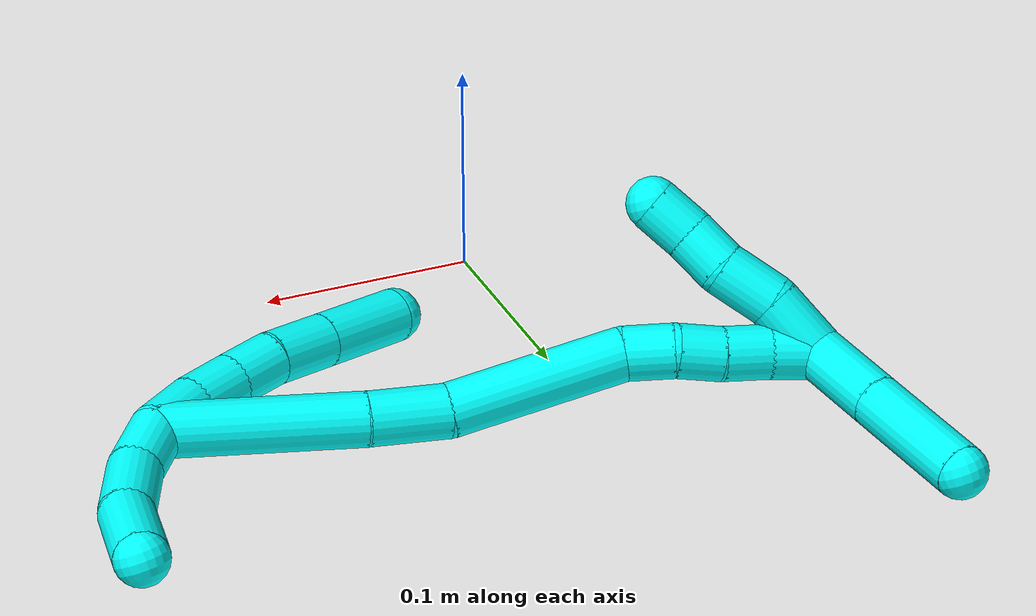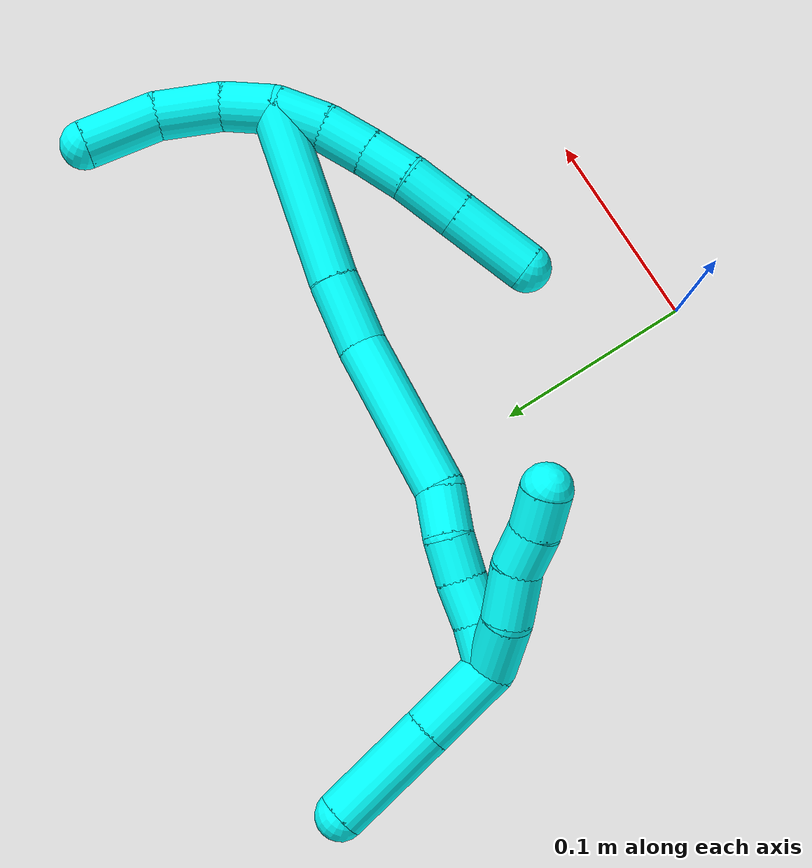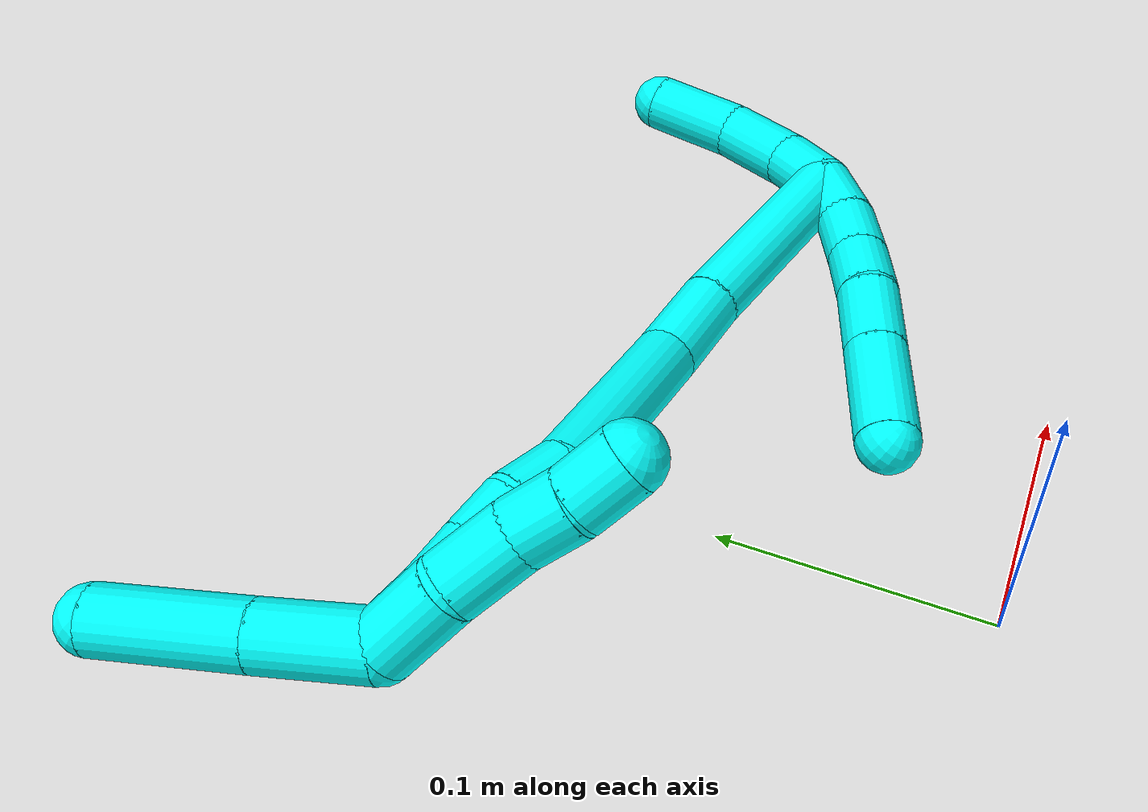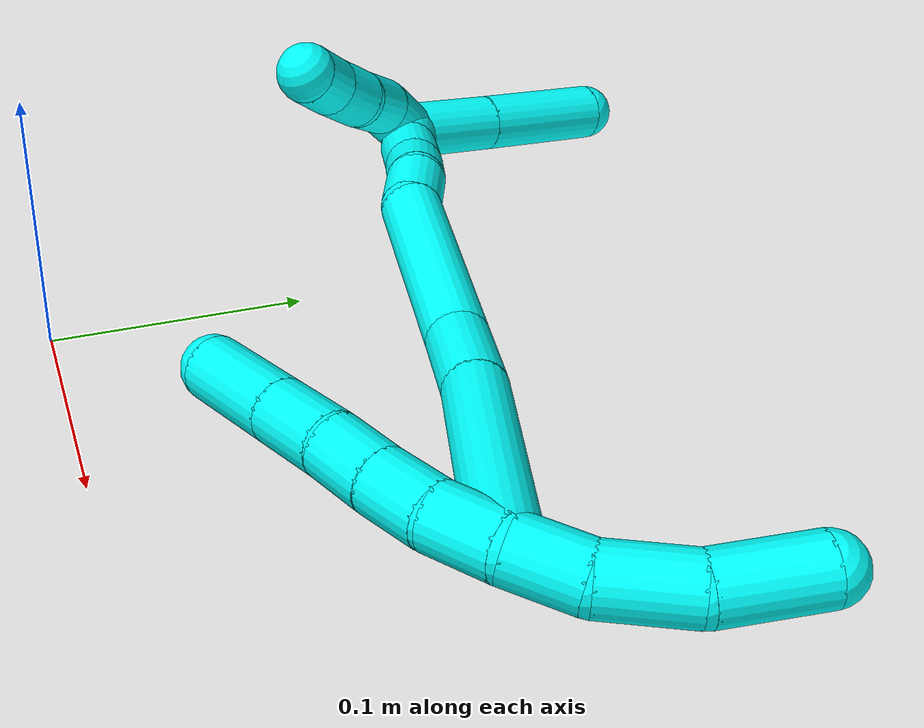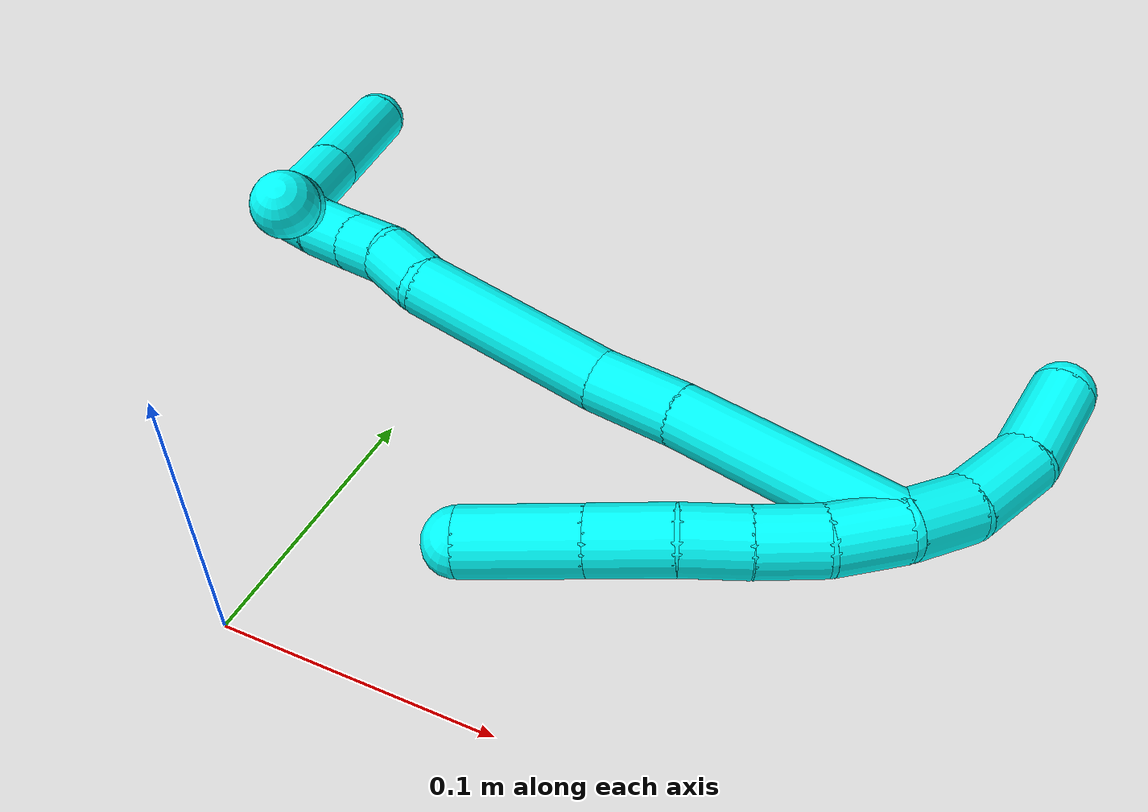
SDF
<sdf version="1.7">
 <world name="default">
  <model name="3">
   <static>0</static>
   <link name="3">
    <collision name="collision-cylinder-e_1_2_8">
     <pose>-0.01026 -0.008302 0.001818 1.35522 -0.87898 -0.7234</pose>
     <geometry><cylinder><radius>0.0125</radius><length>0.026645</length></cylinder></geometry>
     <surface>
      <friction><ode><mu>1.16</mu><mu2>1.16</mu2><slip1>0</slip1><slip2>0</slip2></ode></friction>
      <contact><ode><kp>1e+06</kp><kd>1</kd><max_vel>0</max_vel><min_depth>0.001</min_depth></ode></contact>
     </surface>
    </collision>
    <visual name="visual-cylinder-e_1_2_8">
     <pose>-0.01026 -0.008302 0.001818 1.35522 -0.87898 -0.7234</pose>
     <geometry><cylinder><radius>0.0125</radius><length>0.026645</length></cylinder></geometry>
     <material><ambient>0.003922 1 0.996078 1</ambient></material>
    </visual>
    <collision name="collision-cylinder-e_2_8_9">
     <pose>-0.031436 -0.022749 0.004484 1.43361 -1.05413 -0.938713</pose>
     <geometry><cylinder><radius>0.0125</radius><length>0.025111</length></cylinder></geometry>
     <surface>
      <friction><ode><mu>1.16</mu><mu2>1.16</mu2><slip1>0</slip1><slip2>0</slip2></ode></friction>
      <contact><ode><kp>1e+06</kp><kd>1</kd><max_vel>0</max_vel><min_depth>0.001</min_depth></ode></contact>
     </surface>
    </collision>
    <visual name="visual-cylinder-e_2_8_9">
     <pose>-0.031436 -0.022749 0.004484 1.43361 -1.05413 -0.938713</pose>
     <geometry><cylinder><radius>0.0125</radius><length>0.025111</length></cylinder></geometry>
     <material><ambient>0.003922 1 0.996078 1</ambient></material>
    </visual>
    <collision name="collision-cylinder-e_3_9_10">
     <pose>-0.053242 -0.034236 0.006116 1.42512 -1.11038 -0.983919</pose>
     <geometry><cylinder><radius>0.0125</radius><length>0.02431</length></cylinder></geometry>
     <surface>
      <friction><ode><mu>1.16</mu><mu2>1.16</mu2><slip1>0</slip1><slip2>0</slip2></ode></friction>
      <contact><ode><kp>1e+06</kp><kd>1</kd><max_vel>0</max_vel><min_depth>0.001</min_depth></ode></contact>
     </surface>
    </collision>
    <visual name="visual-cylinder-e_3_9_10">
     <pose>-0.053242 -0.034236 0.006116 1.42512 -1.11038 -0.983919</pose>
     <geometry><cylinder><radius>0.0125</radius><length>0.02431</length></cylinder></geometry>
     <material><ambient>0.003922 1 0.996078 1</ambient></material>
    </visual>
    <collision name="collision-cylinder-e_4_10_11">
     <pose>-0.077582 -0.046422 0.005833 1.72558 -1.09535 -1.23808</pose>
     <geometry><cylinder><radius>0.0125</radius><length>0.030258</length></cylinder></geometry>
     <surface>
      <friction><ode><mu>1.16</mu><mu2>1.16</mu2><slip1>0</slip1><slip2>0</slip2></ode></friction>
      <contact><ode><kp>1e+06</kp><kd>1</kd><max_vel>0</max_vel><min_depth>0.001</min_depth></ode></contact>
     </surface>
    </collision>
    <visual name="visual-cylinder-e_4_10_11">
     <pose>-0.077582 -0.046422 0.005833 1.72558 -1.09535 -1.23808</pose>
     <geometry><cylinder><radius>0.0125</radius><length>0.030258</length></cylinder></geometry>
     <material><ambient>0.003922 1 0.996078 1</ambient></material>
    </visual>
    <collision name="collision-cylinder-e_5_11_6">
     <pose>-0.110462 -0.063116 0.003227 1.72566 -1.09665 -1.23952</pose>
     <geometry><cylinder><radius>0.0125</radius><length>0.043675</length></cylinder></geometry>
     <surface>
      <friction><ode><mu>1.16</mu><mu2>1.16</mu2><slip1>0</slip1><slip2>0</slip2></ode></friction>
      <contact><ode><kp>1e+06</kp><kd>1</kd><max_vel>0</max_vel><min_depth>0.001</min_depth></ode></contact>
     </surface>
    </collision>
    <visual name="visual-cylinder-e_5_11_6">
     <pose>-0.110462 -0.063116 0.003227 1.72566 -1.09665 -1.23952</pose>
     <geometry><cylinder><radius>0.0125</radius><length>0.043675</length></cylinder></geometry>
     <material><ambient>0.003922 1 0.996078 1</ambient></material>
    </visual>
    <collision name="collision-cylinder-e_1_2_12">
     <pose>0.008412 0.009342 -0.004992 -2.06159 0.671193 -1.05396</pose>
     <geometry><cylinder><radius>0.0125</radius><length>0.027053</length></cylinder></geometry>
     <surface>
      <friction><ode><mu>1.16</mu><mu2>1.16</mu2><slip1>0</slip1><slip2>0</slip2></ode></friction>
      <contact><ode><kp>1e+06</kp><kd>1</kd><max_vel>0</max_vel><min_depth>0.001</min_depth></ode></contact>
     </surface>
    </collision>
    <visual name="visual-cylinder-e_1_2_12">
     <pose>0.008412 0.009342 -0.004992 -2.06159 0.671193 -1.05396</pose>
     <geometry><cylinder><radius>0.0125</radius><length>0.027053</length></cylinder></geometry>
     <material><ambient>0.003922 1 0.996078 1</ambient></material>
    </visual>
    <collision name="collision-cylinder-e_2_12_13">
     <pose>0.023341 0.033065 -0.016128 -1.97452 0.394812 -0.588299</pose>
     <geometry><cylinder><radius>0.0125</radius><length>0.033882</length></cylinder></geometry>
     <surface>
      <friction><ode><mu>1.16</mu><mu2>1.16</mu2><slip1>0</slip1><slip2>0</slip2></ode></friction>
      <contact><ode><kp>1e+06</kp><kd>1</kd><max_vel>0</max_vel><min_depth>0.001</min_depth></ode></contact>
     </surface>
    </collision>
    <visual name="visual-cylinder-e_2_12_13">
     <pose>0.023341 0.033065 -0.016128 -1.97452 0.394812 -0.588299</pose>
     <geometry><cylinder><radius>0.0125</radius><length>0.033882</length></cylinder></geometry>
     <material><ambient>0.003922 1 0.996078 1</ambient></material>
    </visual>
    <collision name="collision-cylinder-e_3_13_5">
     <pose>0.031936 0.065562 -0.029268 -1.93936 0.106628 -0.15532</pose>
     <geometry><cylinder><radius>0.0125</radius><length>0.039065</length></cylinder></geometry>
     <surface>
      <friction><ode><mu>1.16</mu><mu2>1.16</mu2><slip1>0</slip1><slip2>0</slip2></ode></friction>
      <contact><ode><kp>1e+06</kp><kd>1</kd><max_vel>0</max_vel><min_depth>0.001</min_depth></ode></contact>
     </surface>
    </collision>
    <visual name="visual-cylinder-e_3_13_5">
     <pose>0.031936 0.065562 -0.029268 -1.93936 0.106628 -0.15532</pose>
     <geometry><cylinder><radius>0.0125</radius><length>0.039065</length></cylinder></geometry>
     <material><ambient>0.003922 1 0.996078 1</ambient></material>
    </visual>
    <collision name="collision-cylinder-e_1_2_14">
     <pose>-0.043879 0.004356 -0.013412 -2.82759 -1.25984 2.71392</pose>
     <geometry><cylinder><radius>0.0125</radius><length>0.092178</length></cylinder></geometry>
     <surface>
      <friction><ode><mu>1.16</mu><mu2>1.16</mu2><slip1>0</slip1><slip2>0</slip2></ode></friction>
      <contact><ode><kp>1e+06</kp><kd>1</kd><max_vel>0</max_vel><min_depth>0.001</min_depth></ode></contact>
     </surface>
    </collision>
    <visual name="visual-cylinder-e_1_2_14">
     <pose>-0.043879 0.004356 -0.013412 -2.82759 -1.25984 2.71392</pose>
     <geometry><cylinder><radius>0.0125</radius><length>0.092178</length></cylinder></geometry>
     <material><ambient>0.003922 1 0.996078 1</ambient></material>
    </visual>
    <collision name="collision-cylinder-e_2_14_15">
     <pose>-0.105443 0.009221 -0.031452 -3.03188 -1.31339 2.99935</pose>
     <geometry><cylinder><radius>0.0125</radius><length>0.036576</length></cylinder></geometry>
     <surface>
      <friction><ode><mu>1.16</mu><mu2>1.16</mu2><slip1>0</slip1><slip2>0</slip2></ode></friction>
      <contact><ode><kp>1e+06</kp><kd>1</kd><max_vel>0</max_vel><min_depth>0.001</min_depth></ode></contact>
     </surface>
    </collision>
    <visual name="visual-cylinder-e_2_14_15">
     <pose>-0.105443 0.009221 -0.031452 -3.03188 -1.31339 2.99935</pose>
     <geometry><cylinder><radius>0.0125</radius><length>0.036576</length></cylinder></geometry>
     <material><ambient>0.003922 1 0.996078 1</ambient></material>
    </visual>
    <collision name="collision-cylinder-e_3_15_16">
     <pose>-0.164382 0.012005 -0.037763 -2.2079 -1.50231 2.1517</pose>
     <geometry><cylinder><radius>0.0125</radius><length>0.082701</length></cylinder></geometry>
     <surface>
      <friction><ode><mu>1.16</mu><mu2>1.16</mu2><slip1>0</slip1><slip2>0</slip2></ode></friction>
      <contact><ode><kp>1e+06</kp><kd>1</kd><max_vel>0</max_vel><min_depth>0.001</min_depth></ode></contact>
     </surface>
    </collision>
    <visual name="visual-cylinder-e_3_15_16">
     <pose>-0.164382 0.012005 -0.037763 -2.2079 -1.50231 2.1517</pose>
     <geometry><cylinder><radius>0.0125</radius><length>0.082701</length></cylinder></geometry>
     <material><ambient>0.003922 1 0.996078 1</ambient></material>
    </visual>
    <collision name="collision-cylinder-e_4_16_17">
     <pose>-0.21639 0.017547 -0.04247 -2.31748 -1.17835 1.98329</pose>
     <geometry><cylinder><radius>0.0125</radius><length>0.023279</length></cylinder></geometry>
     <surface>
      <friction><ode><mu>1.16</mu><mu2>1.16</mu2><slip1>0</slip1><slip2>0</slip2></ode></friction>
      <contact><ode><kp>1e+06</kp><kd>1</kd><max_vel>0</max_vel><min_depth>0.001</min_depth></ode></contact>
     </surface>
    </collision>
    <visual name="visual-cylinder-e_4_16_17">
     <pose>-0.21639 0.017547 -0.04247 -2.31748 -1.17835 1.98329</pose>
     <geometry><cylinder><radius>0.0125</radius><length>0.023279</length></cylinder></geometry>
     <material><ambient>0.003922 1 0.996078 1</ambient></material>
    </visual>
    <collision name="collision-cylinder-e_5_17_18">
     <pose>-0.236717 0.02155 -0.04979 -2.97198 -1.14348 2.87888</pose>
     <geometry><cylinder><radius>0.0125</radius><length>0.021037</length></cylinder></geometry>
     <surface>
      <friction><ode><mu>1.16</mu><mu2>1.16</mu2><slip1>0</slip1><slip2>0</slip2></ode></friction>
      <contact><ode><kp>1e+06</kp><kd>1</kd><max_vel>0</max_vel><min_depth>0.001</min_depth></ode></contact>
     </surface>
    </collision>
    <visual name="visual-cylinder-e_5_17_18">
     <pose>-0.236717 0.02155 -0.04979 -2.97198 -1.14348 2.87888</pose>
     <geometry><cylinder><radius>0.0125</radius><length>0.021037</length></cylinder></geometry>
     <material><ambient>0.003922 1 0.996078 1</ambient></material>
    </visual>
    <collision name="collision-cylinder-e_6_18_19">
     <pose>-0.256733 0.022717 -0.057388 -3.0118 -1.26222 2.9642</pose>
     <geometry><cylinder><radius>0.0125</radius><length>0.021922</length></cylinder></geometry>
     <surface>
      <friction><ode><mu>1.16</mu><mu2>1.16</mu2><slip1>0</slip1><slip2>0</slip2></ode></friction>
      <contact><ode><kp>1e+06</kp><kd>1</kd><max_vel>0</max_vel><min_depth>0.001</min_depth></ode></contact>
     </surface>
    </collision>
    <visual name="visual-cylinder-e_6_18_19">
     <pose>-0.256733 0.022717 -0.057388 -3.0118 -1.26222 2.9642</pose>
     <geometry><cylinder><radius>0.0125</radius><length>0.021922</length></cylinder></geometry>
     <material><ambient>0.003922 1 0.996078 1</ambient></material>
    </visual>
    <collision name="collision-cylinder-e_7_19_1">
     <pose>-0.277539 0.024621 -0.064543 -2.77639 -1.19186 2.60992</pose>
     <geometry><cylinder><radius>0.0125</radius><length>0.022307</length></cylinder></geometry>
     <surface>
      <friction><ode><mu>1.16</mu><mu2>1.16</mu2><slip1>0</slip1><slip2>0</slip2></ode></friction>
      <contact><ode><kp>1e+06</kp><kd>1</kd><max_vel>0</max_vel><min_depth>0.001</min_depth></ode></contact>
     </surface>
    </collision>
    <visual name="visual-cylinder-e_7_19_1">
     <pose>-0.277539 0.024621 -0.064543 -2.77639 -1.19186 2.60992</pose>
     <geometry><cylinder><radius>0.0125</radius><length>0.022307</length></cylinder></geometry>
     <material><ambient>0.003922 1 0.996078 1</ambient></material>
    </visual>
    <collision name="collision-cylinder-e_1_1_20">
     <pose>-0.282345 0.023672 -0.054367 0.170989 0.372103 0.032261</pose>
     <geometry><cylinder><radius>0.0125</radius><length>0.030566</length></cylinder></geometry>
     <surface>
      <friction><ode><mu>1.16</mu><mu2>1.16</mu2><slip1>0</slip1><slip2>0</slip2></ode></friction>
      <contact><ode><kp>1e+06</kp><kd>1</kd><max_vel>0</max_vel><min_depth>0.001</min_depth></ode></contact>
     </surface>
    </collision>
    <visual name="visual-cylinder-e_1_1_20">
     <pose>-0.282345 0.023672 -0.054367 0.170989 0.372103 0.032261</pose>
     <geometry><cylinder><radius>0.0125</radius><length>0.030566</length></cylinder></geometry>
     <material><ambient>0.003922 1 0.996078 1</ambient></material>
    </visual>
    <collision name="collision-cylinder-e_2_20_21">
     <pose>-0.269108 0.017854 -0.029724 0.309696 0.60346 0.097089</pose>
     <geometry><cylinder><radius>0.0125</radius><length>0.027068</length></cylinder></geometry>
     <surface>
      <friction><ode><mu>1.16</mu><mu2>1.16</mu2><slip1>0</slip1><slip2>0</slip2></ode></friction>
      <contact><ode><kp>1e+06</kp><kd>1</kd><max_vel>0</max_vel><min_depth>0.001</min_depth></ode></contact>
     </surface>
    </collision>
    <visual name="visual-cylinder-e_2_20_21">
     <pose>-0.269108 0.017854 -0.029724 0.309696 0.60346 0.097089</pose>
     <geometry><cylinder><radius>0.0125</radius><length>0.027068</length></cylinder></geometry>
     <material><ambient>0.003922 1 0.996078 1</ambient></material>
    </visual>
    <collision name="collision-cylinder-e_3_21_22">
     <pose>-0.257667 0.010815 -0.009971 0.379224 0.365007 0.07081</pose>
     <geometry><cylinder><radius>0.0125</radius><length>0.021066</length></cylinder></geometry>
     <surface>
      <friction><ode><mu>1.16</mu><mu2>1.16</mu2><slip1>0</slip1><slip2>0</slip2></ode></friction>
      <contact><ode><kp>1e+06</kp><kd>1</kd><max_vel>0</max_vel><min_depth>0.001</min_depth></ode></contact>
     </surface>
    </collision>
    <visual name="visual-cylinder-e_3_21_22">
     <pose>-0.257667 0.010815 -0.009971 0.379224 0.365007 0.07081</pose>
     <geometry><cylinder><radius>0.0125</radius><length>0.021066</length></cylinder></geometry>
     <material><ambient>0.003922 1 0.996078 1</ambient></material>
    </visual>
    <collision name="collision-cylinder-e_4_22_4">
     <pose>-0.248953 0.004727 0.008274 0.262343 0.483919 0.065096</pose>
     <geometry><cylinder><radius>0.0125</radius><length>0.0213</length></cylinder></geometry>
     <surface>
      <friction><ode><mu>1.16</mu><mu2>1.16</mu2><slip1>0</slip1><slip2>0</slip2></ode></friction>
      <contact><ode><kp>1e+06</kp><kd>1</kd><max_vel>0</max_vel><min_depth>0.001</min_depth></ode></contact>
     </surface>
    </collision>
    <visual name="visual-cylinder-e_4_22_4">
     <pose>-0.248953 0.004727 0.008274 0.262343 0.483919 0.065096</pose>
     <geometry><cylinder><radius>0.0125</radius><length>0.0213</length></cylinder></geometry>
     <material><ambient>0.003922 1 0.996078 1</ambient></material>
    </visual>
    <collision name="collision-cylinder-e_1_1_23">
     <pose>-0.29221 0.042943 -0.080538 -2.19525 -0.20457 0.395735</pose>
     <geometry><cylinder><radius>0.0125</radius><length>0.04242</length></cylinder></geometry>
     <surface>
      <friction><ode><mu>1.16</mu><mu2>1.16</mu2><slip1>0</slip1><slip2>0</slip2></ode></friction>
      <contact><ode><kp>1e+06</kp><kd>1</kd><max_vel>0</max_vel><min_depth>0.001</min_depth></ode></contact>
     </surface>
    </collision>
    <visual name="visual-cylinder-e_1_1_23">
     <pose>-0.29221 0.042943 -0.080538 -2.19525 -0.20457 0.395735</pose>
     <geometry><cylinder><radius>0.0125</radius><length>0.04242</length></cylinder></geometry>
     <material><ambient>0.003922 1 0.996078 1</ambient></material>
    </visual>
    <collision name="collision-cylinder-e_2_23_3">
     <pose>-0.302228 0.082884 -0.108898 -2.18305 -0.199626 0.380745</pose>
     <geometry><cylinder><radius>0.0125</radius><length>0.05758</length></cylinder></geometry>
     <surface>
      <friction><ode><mu>1.16</mu><mu2>1.16</mu2><slip1>0</slip1><slip2>0</slip2></ode></friction>
      <contact><ode><kp>1e+06</kp><kd>1</kd><max_vel>0</max_vel><min_depth>0.001</min_depth></ode></contact>
     </surface>
    </collision>
    <visual name="visual-cylinder-e_2_23_3">
     <pose>-0.302228 0.082884 -0.108898 -2.18305 -0.199626 0.380745</pose>
     <geometry><cylinder><radius>0.0125</radius><length>0.05758</length></cylinder></geometry>
     <material><ambient>0.003922 1 0.996078 1</ambient></material>
    </visual>
    <collision name="collision-sphere-3">
     <pose>-0.307937 0.105977 -0.125116 0 -0 0</pose>
     <geometry><sphere><radius>0.0125</radius></sphere></geometry>
     <surface>
      <friction><ode><mu>1.16</mu><mu2>1.16</mu2><slip1>0</slip1><slip2>0</slip2></ode></friction>
      <contact><ode><kp>1e+06</kp><kd>1</kd><max_vel>0</max_vel><min_depth>0.001</min_depth></ode></contact>
     </surface>
    </collision>
    <visual name="visual-sphere-3">
     <pose>-0.307937 0.105977 -0.125116 0 -0 0</pose>
     <geometry><sphere><radius>0.0125</radius></sphere></geometry>
     <material><ambient>0.003922 1 0.996078 1</ambient></material>
    </visual>
    <collision name="collision-sphere-23">
     <pose>-0.296518 0.059791 -0.09268 0 -0 0</pose>
     <geometry><sphere><radius>0.0125</radius></sphere></geometry>
     <surface>
      <friction><ode><mu>1.16</mu><mu2>1.16</mu2><slip1>0</slip1><slip2>0</slip2></ode></friction>
      <contact><ode><kp>1e+06</kp><kd>1</kd><max_vel>0</max_vel><min_depth>0.001</min_depth></ode></contact>
     </surface>
    </collision>
    <visual name="visual-sphere-23">
     <pose>-0.296518 0.059791 -0.09268 0 -0 0</pose>
     <geometry><sphere><radius>0.0125</radius></sphere></geometry>
     <material><ambient>0.003922 1 0.996078 1</ambient></material>
    </visual>
    <collision name="collision-sphere-4">
     <pose>-0.243998 0.002283 0.017379 0 -0 0</pose>
     <geometry><sphere><radius>0.0125</radius></sphere></geometry>
     <surface>
      <friction><ode><mu>1.16</mu><mu2>1.16</mu2><slip1>0</slip1><slip2>0</slip2></ode></friction>
      <contact><ode><kp>1e+06</kp><kd>1</kd><max_vel>0</max_vel><min_depth>0.001</min_depth></ode></contact>
     </surface>
    </collision>
    <visual name="visual-sphere-4">
     <pose>-0.243998 0.002283 0.017379 0 -0 0</pose>
     <geometry><sphere><radius>0.0125</radius></sphere></geometry>
     <material><ambient>0.003922 1 0.996078 1</ambient></material>
    </visual>
    <collision name="collision-sphere-22">
     <pose>-0.253907 0.007172 -0.000831 0 -0 0</pose>
     <geometry><sphere><radius>0.0125</radius></sphere></geometry>
     <surface>
      <friction><ode><mu>1.16</mu><mu2>1.16</mu2><slip1>0</slip1><slip2>0</slip2></ode></friction>
      <contact><ode><kp>1e+06</kp><kd>1</kd><max_vel>0</max_vel><min_depth>0.001</min_depth></ode></contact>
     </surface>
    </collision>
    <visual name="visual-sphere-22">
     <pose>-0.253907 0.007172 -0.000831 0 -0 0</pose>
     <geometry><sphere><radius>0.0125</radius></sphere></geometry>
     <material><ambient>0.003922 1 0.996078 1</ambient></material>
    </visual>
    <collision name="collision-sphere-21">
     <pose>-0.261427 0.014457 -0.019111 0 -0 0</pose>
     <geometry><sphere><radius>0.0125</radius></sphere></geometry>
     <surface>
      <friction><ode><mu>1.16</mu><mu2>1.16</mu2><slip1>0</slip1><slip2>0</slip2></ode></friction>
      <contact><ode><kp>1e+06</kp><kd>1</kd><max_vel>0</max_vel><min_depth>0.001</min_depth></ode></contact>
     </surface>
    </collision>
    <visual name="visual-sphere-21">
     <pose>-0.261427 0.014457 -0.019111 0 -0 0</pose>
     <geometry><sphere><radius>0.0125</radius></sphere></geometry>
     <material><ambient>0.003922 1 0.996078 1</ambient></material>
    </visual>
    <collision name="collision-sphere-20">
     <pose>-0.276788 0.02125 -0.040338 0 -0 0</pose>
     <geometry><sphere><radius>0.0125</radius></sphere></geometry>
     <surface>
      <friction><ode><mu>1.16</mu><mu2>1.16</mu2><slip1>0</slip1><slip2>0</slip2></ode></friction>
      <contact><ode><kp>1e+06</kp><kd>1</kd><max_vel>0</max_vel><min_depth>0.001</min_depth></ode></contact>
     </surface>
    </collision>
    <visual name="visual-sphere-20">
     <pose>-0.276788 0.02125 -0.040338 0 -0 0</pose>
     <geometry><sphere><radius>0.0125</radius></sphere></geometry>
     <material><ambient>0.003922 1 0.996078 1</ambient></material>
    </visual>
    <collision name="collision-sphere-6">
     <pose>-0.12989 -0.072967 0.001689 0 -0 0</pose>
     <geometry><sphere><radius>0.0125</radius></sphere></geometry>
     <surface>
      <friction><ode><mu>1.16</mu><mu2>1.16</mu2><slip1>0</slip1><slip2>0</slip2></ode></friction>
      <contact><ode><kp>1e+06</kp><kd>1</kd><max_vel>0</max_vel><min_depth>0.001</min_depth></ode></contact>
     </surface>
    </collision>
    <visual name="visual-sphere-6">
     <pose>-0.12989 -0.072967 0.001689 0 -0 0</pose>
     <geometry><sphere><radius>0.0125</radius></sphere></geometry>
     <material><ambient>0.003922 1 0.996078 1</ambient></material>
    </visual>
    <collision name="collision-sphere-11">
     <pose>-0.091033 -0.053264 0.004765 0 -0 0</pose>
     <geometry><sphere><radius>0.0125</radius></sphere></geometry>
     <surface>
      <friction><ode><mu>1.16</mu><mu2>1.16</mu2><slip1>0</slip1><slip2>0</slip2></ode></friction>
      <contact><ode><kp>1e+06</kp><kd>1</kd><max_vel>0</max_vel><min_depth>0.001</min_depth></ode></contact>
     </surface>
    </collision>
    <visual name="visual-sphere-11">
     <pose>-0.091033 -0.053264 0.004765 0 -0 0</pose>
     <geometry><sphere><radius>0.0125</radius></sphere></geometry>
     <material><ambient>0.003922 1 0.996078 1</ambient></material>
    </visual>
    <collision name="collision-sphere-10">
     <pose>-0.064131 -0.03958 0.0069 0 -0 0</pose>
     <geometry><sphere><radius>0.0125</radius></sphere></geometry>
     <surface>
      <friction><ode><mu>1.16</mu><mu2>1.16</mu2><slip1>0</slip1><slip2>0</slip2></ode></friction>
      <contact><ode><kp>1e+06</kp><kd>1</kd><max_vel>0</max_vel><min_depth>0.001</min_depth></ode></contact>
     </surface>
    </collision>
    <visual name="visual-sphere-10">
     <pose>-0.064131 -0.03958 0.0069 0 -0 0</pose>
     <geometry><sphere><radius>0.0125</radius></sphere></geometry>
     <material><ambient>0.003922 1 0.996078 1</ambient></material>
    </visual>
    <collision name="collision-sphere-9">
     <pose>-0.042353 -0.028893 0.005332 0 -0 0</pose>
     <geometry><sphere><radius>0.0125</radius></sphere></geometry>
     <surface>
      <friction><ode><mu>1.16</mu><mu2>1.16</mu2><slip1>0</slip1><slip2>0</slip2></ode></friction>
      <contact><ode><kp>1e+06</kp><kd>1</kd><max_vel>0</max_vel><min_depth>0.001</min_depth></ode></contact>
     </surface>
    </collision>
    <visual name="visual-sphere-9">
     <pose>-0.042353 -0.028893 0.005332 0 -0 0</pose>
     <geometry><sphere><radius>0.0125</radius></sphere></geometry>
     <material><ambient>0.003922 1 0.996078 1</ambient></material>
    </visual>
    <collision name="collision-sphere-2">
     <geometry><sphere><radius>0.0125</radius></sphere></geometry>
     <surface>
      <friction><ode><mu>1.16</mu><mu2>1.16</mu2><slip1>0</slip1><slip2>0</slip2></ode></friction>
      <contact><ode><kp>1e+06</kp><kd>1</kd><max_vel>0</max_vel><min_depth>0.001</min_depth></ode></contact>
     </surface>
    </collision>
    <visual name="visual-sphere-2">
     <geometry><sphere><radius>0.0125</radius></sphere></geometry>
     <material><ambient>0.003922 1 0.996078 1</ambient></material>
    </visual>
    <collision name="collision-sphere-19">
     <pose>-0.267177 0.023148 -0.060689 0 -0 0</pose>
     <geometry><sphere><radius>0.0125</radius></sphere></geometry>
     <surface>
      <friction><ode><mu>1.16</mu><mu2>1.16</mu2><slip1>0</slip1><slip2>0</slip2></ode></friction>
      <contact><ode><kp>1e+06</kp><kd>1</kd><max_vel>0</max_vel><min_depth>0.001</min_depth></ode></contact>
     </surface>
    </collision>
    <visual name="visual-sphere-19">
     <pose>-0.267177 0.023148 -0.060689 0 -0 0</pose>
     <geometry><sphere><radius>0.0125</radius></sphere></geometry>
     <material><ambient>0.003922 1 0.996078 1</ambient></material>
    </visual>
    <collision name="collision-sphere-8">
     <pose>-0.020519 -0.016605 0.003636 0 -0 0</pose>
     <geometry><sphere><radius>0.0125</radius></sphere></geometry>
     <surface>
      <friction><ode><mu>1.16</mu><mu2>1.16</mu2><slip1>0</slip1><slip2>0</slip2></ode></friction>
      <contact><ode><kp>1e+06</kp><kd>1</kd><max_vel>0</max_vel><min_depth>0.001</min_depth></ode></contact>
     </surface>
    </collision>
    <visual name="visual-sphere-8">
     <pose>-0.020519 -0.016605 0.003636 0 -0 0</pose>
     <geometry><sphere><radius>0.0125</radius></sphere></geometry>
     <material><ambient>0.003922 1 0.996078 1</ambient></material>
    </visual>
    <collision name="collision-sphere-12">
     <pose>0.016825 0.018684 -0.009985 0 -0 0</pose>
     <geometry><sphere><radius>0.0125</radius></sphere></geometry>
     <surface>
      <friction><ode><mu>1.16</mu><mu2>1.16</mu2><slip1>0</slip1><slip2>0</slip2></ode></friction>
      <contact><ode><kp>1e+06</kp><kd>1</kd><max_vel>0</max_vel><min_depth>0.001</min_depth></ode></contact>
     </surface>
    </collision>
    <visual name="visual-sphere-12">
     <pose>0.016825 0.018684 -0.009985 0 -0 0</pose>
     <geometry><sphere><radius>0.0125</radius></sphere></geometry>
     <material><ambient>0.003922 1 0.996078 1</ambient></material>
    </visual>
    <collision name="collision-sphere-13">
     <pose>0.029857 0.047445 -0.022271 0 -0 0</pose>
     <geometry><sphere><radius>0.0125</radius></sphere></geometry>
     <surface>
      <friction><ode><mu>1.16</mu><mu2>1.16</mu2><slip1>0</slip1><slip2>0</slip2></ode></friction>
      <contact><ode><kp>1e+06</kp><kd>1</kd><max_vel>0</max_vel><min_depth>0.001</min_depth></ode></contact>
     </surface>
    </collision>
    <visual name="visual-sphere-13">
     <pose>0.029857 0.047445 -0.022271 0 -0 0</pose>
     <geometry><sphere><radius>0.0125</radius></sphere></geometry>
     <material><ambient>0.003922 1 0.996078 1</ambient></material>
    </visual>
    <collision name="collision-sphere-5">
     <pose>0.034015 0.08368 -0.036265 0 -0 0</pose>
     <geometry><sphere><radius>0.0125</radius></sphere></geometry>
     <surface>
      <friction><ode><mu>1.16</mu><mu2>1.16</mu2><slip1>0</slip1><slip2>0</slip2></ode></friction>
      <contact><ode><kp>1e+06</kp><kd>1</kd><max_vel>0</max_vel><min_depth>0.001</min_depth></ode></contact>
     </surface>
    </collision>
    <visual name="visual-sphere-5">
     <pose>0.034015 0.08368 -0.036265 0 -0 0</pose>
     <geometry><sphere><radius>0.0125</radius></sphere></geometry>
     <material><ambient>0.003922 1 0.996078 1</ambient></material>
    </visual>
    <collision name="collision-sphere-14">
     <pose>-0.087758 0.008711 -0.026825 0 -0 0</pose>
     <geometry><sphere><radius>0.0125</radius></sphere></geometry>
     <surface>
      <friction><ode><mu>1.16</mu><mu2>1.16</mu2><slip1>0</slip1><slip2>0</slip2></ode></friction>
      <contact><ode><kp>1e+06</kp><kd>1</kd><max_vel>0</max_vel><min_depth>0.001</min_depth></ode></contact>
     </surface>
    </collision>
    <visual name="visual-sphere-14">
     <pose>-0.087758 0.008711 -0.026825 0 -0 0</pose>
     <geometry><sphere><radius>0.0125</radius></sphere></geometry>
     <material><ambient>0.003922 1 0.996078 1</ambient></material>
    </visual>
    <collision name="collision-sphere-15">
     <pose>-0.123129 0.009731 -0.03608 0 -0 0</pose>
     <geometry><sphere><radius>0.0125</radius></sphere></geometry>
     <surface>
      <friction><ode><mu>1.16</mu><mu2>1.16</mu2><slip1>0</slip1><slip2>0</slip2></ode></friction>
      <contact><ode><kp>1e+06</kp><kd>1</kd><max_vel>0</max_vel><min_depth>0.001</min_depth></ode></contact>
     </surface>
    </collision>
    <visual name="visual-sphere-15">
     <pose>-0.123129 0.009731 -0.03608 0 -0 0</pose>
     <geometry><sphere><radius>0.0125</radius></sphere></geometry>
     <material><ambient>0.003922 1 0.996078 1</ambient></material>
    </visual>
    <collision name="collision-sphere-16">
     <pose>-0.205635 0.01428 -0.039447 0 -0 0</pose>
     <geometry><sphere><radius>0.0125</radius></sphere></geometry>
     <surface>
      <friction><ode><mu>1.16</mu><mu2>1.16</mu2><slip1>0</slip1><slip2>0</slip2></ode></friction>
      <contact><ode><kp>1e+06</kp><kd>1</kd><max_vel>0</max_vel><min_depth>0.001</min_depth></ode></contact>
     </surface>
    </collision>
    <visual name="visual-sphere-16">
     <pose>-0.205635 0.01428 -0.039447 0 -0 0</pose>
     <geometry><sphere><radius>0.0125</radius></sphere></geometry>
     <material><ambient>0.003922 1 0.996078 1</ambient></material>
    </visual>
    <collision name="collision-sphere-17">
     <pose>-0.227144 0.020814 -0.045494 0 -0 0</pose>
     <geometry><sphere><radius>0.0125</radius></sphere></geometry>
     <surface>
      <friction><ode><mu>1.16</mu><mu2>1.16</mu2><slip1>0</slip1><slip2>0</slip2></ode></friction>
      <contact><ode><kp>1e+06</kp><kd>1</kd><max_vel>0</max_vel><min_depth>0.001</min_depth></ode></contact>
     </surface>
    </collision>
    <visual name="visual-sphere-17">
     <pose>-0.227144 0.020814 -0.045494 0 -0 0</pose>
     <geometry><sphere><radius>0.0125</radius></sphere></geometry>
     <material><ambient>0.003922 1 0.996078 1</ambient></material>
    </visual>
    <collision name="collision-sphere-18">
     <pose>-0.24629 0.022286 -0.054087 0 -0 0</pose>
     <geometry><sphere><radius>0.0125</radius></sphere></geometry>
     <surface>
      <friction><ode><mu>1.16</mu><mu2>1.16</mu2><slip1>0</slip1><slip2>0</slip2></ode></friction>
      <contact><ode><kp>1e+06</kp><kd>1</kd><max_vel>0</max_vel><min_depth>0.001</min_depth></ode></contact>
     </surface>
    </collision>
    <visual name="visual-sphere-18">
     <pose>-0.24629 0.022286 -0.054087 0 -0 0</pose>
     <geometry><sphere><radius>0.0125</radius></sphere></geometry>
     <material><ambient>0.003922 1 0.996078 1</ambient></material>
    </visual>
    <collision name="collision-sphere-1">
     <pose>-0.287901 0.026095 -0.068396 0 -0 0</pose>
     <geometry><sphere><radius>0.0125</radius></sphere></geometry>
     <surface>
      <friction><ode><mu>1.16</mu><mu2>1.16</mu2><slip1>0</slip1><slip2>0</slip2></ode></friction>
      <contact><ode><kp>1e+06</kp><kd>1</kd><max_vel>0</max_vel><min_depth>0.001</min_depth></ode></contact>
     </surface>
    </collision>
    <visual name="visual-sphere-1">
     <pose>-0.287901 0.026095 -0.068396 0 -0 0</pose>
     <geometry><sphere><radius>0.0125</radius></sphere></geometry>
     <material><ambient>0.003922 1 0.996078 1</ambient></material>
    </visual>
    <inertial>
     <pose>-0.142717 0.013225 -0.031504 0 -0 0</pose>
     <mass>0.75</mass>
     <inertia><ixx>5e-06</ixx><ixy>0</ixy><ixz>0</ixz><iyy>0.000157</iyy><iyz>0</iyz><izz>0.000104</izz></inertia>
    </inertial>
   </link>
   <pose>0.192251 0.116167 0.01706 0.454355 0.191179 -0.027308</pose>
  </model>
 </world>
</sdf>
